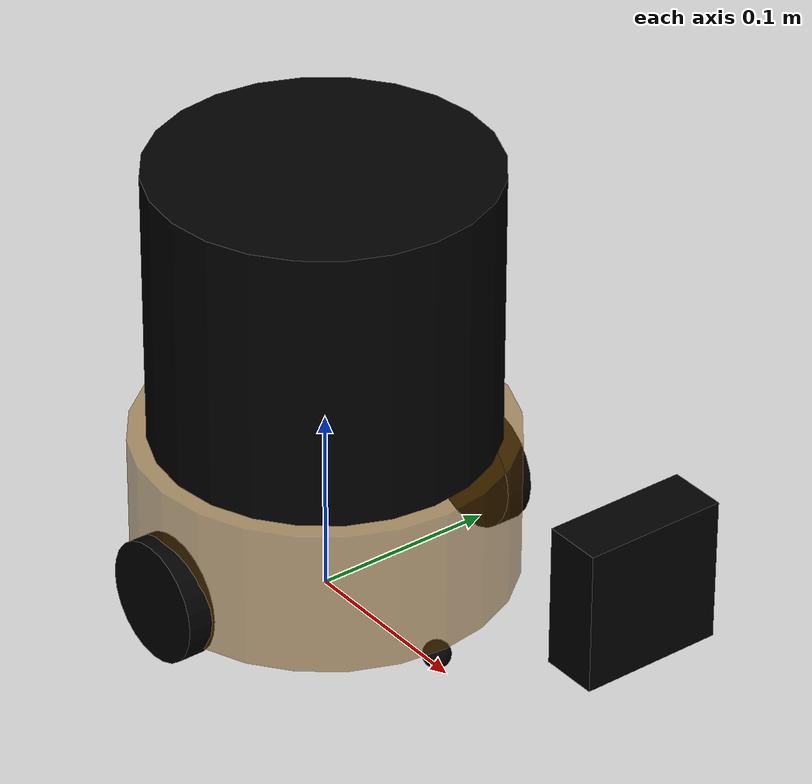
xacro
<robot name = "mycar" xmlns:xacro = "http://wiki.ros.org/xacro">

    <!-- 包含惯性矩阵文件 -->
    <xacro:include filename = "head.xacro"/>

    <!-- 硬件可视化，或者说模型样子 -->
    <!-- 底盘 -->
    <xacro:include filename = "car_base.urdf.xacro"/>
    <!-- 摄像头 -->
    <xacro:include filename = "car_camera.urdf.xacro"/>
    <!-- 雷达 -->
    <xacro:include filename = "car_laser.urdf.xacro"/>

    <!-- Gazebo配置 -->
    <!-- 传动装置 -->
    <xacro:include filename = "move.urdf.xacro" />
    <!-- 雷达仿真 -->
    <xacro:include filename = "sensors_laser.urdf.xacro" />
    <!-- 摄像头仿真 -->
    <xacro:include filename = "sensors_camera.urdf.xacro" />
</robot>

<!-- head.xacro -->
<!-- 定义机器人名称为 "base"，并使用 xacro 的命名空间 -->
<robot name = "base" xmlns:xacro = "http://wiki.ros.org/xacro">

    <!-- Macro for inertia matrix -->

    <!-- 定义一个名为 "sphere_inertial_matrix" 的宏，用于生成球体的惯性矩 -->
    <!-- 参数 "m" 表示球体质量，"r" 表示球体半径 -->
    <xacro:macro name = "sphere_inertial_matrix" params = "m r">
        <!-- 定义惯性参数 -->
        <inertial>
            <!-- 设置球体的质量 -->
            <mass value = "${m}" />
            <!-- 设置球体的惯性矩，根据公式 I = 2/5 * m * r^2 -->
            <inertia ixx = "${2*m*r*r/5}" ixy = "0" ixz = "0"
                iyy = "${2*m*r*r/5}" iyz = "0"
                izz = "${2*m*r*r/5}" />
        </inertial>
    </xacro:macro>

    <!-- 定义一个名为 "cylinder_inertial_matrix" 的宏，用于生成圆柱体的惯性矩 -->
    <!-- 参数 "m" 表示圆柱体质量，"r" 表示圆柱体半径，"h" 表示圆柱体高度 -->
    <xacro:macro name = "cylinder_inertial_matrix" params = "m r h">
        <!-- 定义惯性参数 -->
        <inertial>
            <!-- 设置圆柱体的质量 -->
            <mass value = "${m}" />
            <!-- 设置圆柱体的惯性矩 -->
            <!-- ixx 和 iyy 的计算公式为 I = m * (3*r^2 + h^2) / 12 -->
            <!-- izz 的计算公式为 I = 1/2 * m * r^2 -->
            <inertia ixx = "${m*(3*r*r+h*h)/12}" ixy = "0" ixz = "0"
                iyy = "${m*(3*r*r+h*h)/12}" iyz = "0"
                izz = "${m*r*r/2}" />
        </inertial>
    </xacro:macro>

    <!-- 定义一个名为 "Box_inertial_matrix" 的宏，用于生成长方体的惯性矩 -->
    <!-- 参数 "m" 表示长方体质量，"l" 表示长度，"w" 表示宽度，"h" 表示高度 -->
    <xacro:macro name = "Box_inertial_matrix" params = "m l w h">
       <!-- 定义惯性参数 -->
       <inertial>
           <!-- 设置长方体的质量 -->
           <mass value = "${m}" />
           <!-- 设置长方体的惯性矩 -->
           <!-- ixx 的计算公式为 I = m * (h^2 + l^2) / 12 -->
           <!-- iyy 的计算公式为 I = m * (w^2 + l^2) / 12 -->
           <!-- izz 的计算公式为 I = m * (w^2 + h^2) / 12 -->
           <inertia ixx = "${m*(h*h + l*l)/12}" ixy = "0" ixz = "0"
               iyy = "${m*(w*w + l*l)/12}" iyz = "0"
               izz = "${m*(w*w + h*h)/12}" />
       </inertial>
   </xacro:macro>
</robot>

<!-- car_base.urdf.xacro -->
<!--
    使用 xacro 优化 URDF 版的小车底盘实现：

    实现思路:
    1.将一些常量、变量封装为 xacro:property
      比如:PI 值、小车底盘半径、离地间距、车轮半径、宽度 ....
    2.使用 宏 封装驱动轮以及支撑轮实现，调用相关宏生成驱动轮与支撑轮

-->
<!-- 根标签，必须声明 xmlns:xacro -->
<robot name="my_base" xmlns:xacro="http://www.ros.org/wiki/xacro">
    <!-- 封装变量、常量 -->
    <!-- PI 值设置精度需要高一些，否则后续车轮翻转量计算时，可能会出现肉眼不能察觉的车轮倾斜，从而导致模型抖动 -->
    <xacro:property name="PI" value="3.1415926"/>
    <!-- 宏:黑色设置 -->
    <material name="black">
        <color rgba="0.0 0.0 0.0 1.0" />
    </material>
    <!-- 底盘属性 -->
    <xacro:property name="base_footprint_radius" value="0.001" /> <!-- base_footprint 半径  -->
    <xacro:property name="base_link_radius" value="0.1" /> <!-- base_link 半径 -->
    <xacro:property name="base_link_length" value="0.08" /> <!-- base_link 长 -->
    <xacro:property name="earth_space" value="0.015" /> <!-- 离地间距 -->
    <xacro:property name="base_link_m" value="0.5" /> <!-- 质量  -->

    <!-- 底盘 -->
    <link name="base_footprint">
      <visual>
        <geometry>
          <sphere radius="${base_footprint_radius}" />
        </geometry>
      </visual>
    </link>

    <link name="base_link">
      <visual>
        <geometry>
          <cylinder radius="${base_link_radius}" length="${base_link_length}" />
        </geometry>
        <origin xyz="0 0 0" rpy="0 0 0" />
        <material name="yellow">
          <color rgba="0.5 0.3 0.0 0.5" />
        </material>
      </visual>
      <!-- extra add -->
      <collision>
        <geometry>
          <cylinder radius="${base_link_radius}" length="${base_link_length}" />
        </geometry>
        <origin xyz="0 0 0" rpy="0 0 0" />
      </collision>
      <!-- add inertial macro -->
      <xacro:cylinder_inertial_matrix m="${base_link_m}" r="${base_link_radius}" h="${base_link_length}" />

    </link>

    <joint name="base_link2base_footprint" type="fixed">
      <parent link="base_footprint" />
      <child link="base_link" />
      <origin xyz="0 0 ${earth_space + base_link_length / 2 }" />
    </joint>

    <!-- setting color -->
    <gazebo reference="base_link">
        <material>Gazebo/Yellow</material>
    </gazebo>

    <!-- 驱动轮 -->
    <!-- 驱动轮属性 -->
    <xacro:property name="wheel_radius" value="0.0325" /><!-- 半径 -->
    <xacro:property name="wheel_length" value="0.015" /><!-- 宽度 -->
    <xacro:property name="wheel_m" value="0.05" /> <!-- 质量  -->

    <!-- 驱动轮宏实现 -->
    <xacro:macro name="add_wheels" params="name flag">
      <link name="${name}_wheel">
        <visual>
          <geometry>
            <cylinder radius="${wheel_radius}" length="${wheel_length}" />
          </geometry>
          <origin xyz="0.0 0.0 0.0" rpy="${PI / 2} 0.0 0.0" />
          <material name="black" />
        </visual>
        <!-- extra add -->
        <collision>
          <geometry>
            <cylinder radius="${wheel_radius}" length="${wheel_length}" />
          </geometry>
          <origin xyz="0.0 0.0 0.0" rpy="${PI / 2} 0.0 0.0" />
        </collision>
        <!-- add inertial macro -->
        <xacro:cylinder_inertial_matrix m="${wheel_m}" r="${wheel_radius}" h="${wheel_length}" />
      </link>

      <joint name="${name}_wheel2base_link" type="continuous">
        <parent link="base_link" />
        <child link="${name}_wheel" />
        <origin xyz="0 ${flag * base_link_radius} ${-(earth_space + base_link_length / 2 - wheel_radius) }" />
        <axis xyz="0 1 0" />
      </joint>

      <gazebo reference="${name}_wheel">
        <material>Gazebo/Red</material>
      </gazebo>

    </xacro:macro>

    <xacro:add_wheels name="left" flag="1" />
    <xacro:add_wheels name="right" flag="-1" />
    <!-- 支撑轮 -->
    <!-- 支撑轮属性 -->
    <xacro:property name="support_wheel_radius" value="0.0075" /> <!-- 支撑轮半径 -->
    <xacro:property name="support_wheel_m" value="0.03" /> <!-- 质量  -->

    <!-- 支撑轮宏 -->
    <xacro:macro name="add_support_wheel" params="name flag" >
      <link name="${name}_wheel">
        <visual>
            <geometry>
                <sphere radius="${support_wheel_radius}" />
            </geometry>
            <origin xyz="0 0 0" rpy="0 0 0" />
            <material name="black" />
        </visual>
        <!-- add -->
        <collision>
            <geometry>
                <sphere radius="${support_wheel_radius}" />
            </geometry>
            <origin xyz="0 0 0" rpy="0 0 0" />
        </collision>
        <xacro:sphere_inertial_matrix m="${support_wheel_m}" r="${support_wheel_radius}" />
      </link>

      <joint name="${name}_wheel2base_link" type="continuous">
          <parent link="base_link" />
          <child link="${name}_wheel" />
          <origin xyz="${flag * (base_link_radius - support_wheel_radius)} 0 ${-(base_link_length / 2 + earth_space / 2)}" />
          <axis xyz="1 1 1" />
      </joint>
      <gazebo reference="${name}_wheel">
        <material>Gazebo/Red</material>
      </gazebo>
    </xacro:macro>

    <xacro:add_support_wheel name="front" flag="1" />
    <xacro:add_support_wheel name="back" flag="-1" />

</robot>

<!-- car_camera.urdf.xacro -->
<robot name="my_camera" xmlns:xacro="http://wiki.ros.org/xacro">

    <xacro:property name="camera_length" value="0.03" />
    <xacro:property name="camera_width" value="0.075" />
    <xacro:property name="camera_height" value="0.075" />
    <xacro:property name="camera_x" value="0.24" />
    <xacro:property name="camera_y" value="0.0" />
    <xacro:property name="camera_z" value="${base_link_length / 2 + camera_height / 2}" />

    <link name="camera">
        <visual>
            <geometry>
                <box size="${camera_length} ${camera_width} ${camera_height}" />
            </geometry>
            <origin xyz="0.0 0.0 0.0" rpy="0.0 0.0 0.0" />
            <material name="black" />
        </visual>
    </link>

    <joint name="camera2base_link" type="fixed">
        <parent link="base_link" />
        <child link="camera" />
        <origin xyz="${camera_x} ${camera_y} ${camera_z}" />
    </joint>

</robot>

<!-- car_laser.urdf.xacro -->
<robot name="my_laser" xmlns:xacro="http://wiki.ros.org/xacro">

    <xacro:property name="support_length" value="0.0" />
    <xacro:property name="support_radius" value="0.0" />
    <xacro:property name="support_x" value="0.0" />
    <xacro:property name="support_y" value="0.0" />
    <xacro:property name="support_z" value="${base_link_length / 2 + support_length / 2}" />

    <link name="support">
        <visual>
            <geometry>
                <cylinder radius="${support_radius}" length="${support_length}" />
            </geometry>
            <origin xyz="0.0 0.0 0.0" rpy="0.0 0.0 0.0" />
            <material name="red">
                <color rgba="0.8 0.2 0.0 0.8" />
            </material>
        </visual>
    </link>

    <joint name="support2base_link" type="fixed">
        <parent link="base_link" />
        <child link="support" />
        <origin xyz="${support_x} ${support_y} ${support_z}" />
    </joint>

    <xacro:property name="laser_length" value="0.15" />
    <xacro:property name="laser_radius" value="0.09" />
    <xacro:property name="laser_x" value="0.0" />
    <xacro:property name="laser_y" value="0.0" />
    <xacro:property name="laser_z" value="${support_length / 2 + laser_length / 2}" />

    <link name="laser">
        <visual>
            <geometry>
                <cylinder radius="${laser_radius}" length="${laser_length}" />
            </geometry>
            <origin xyz="0.0 0.0 0.0" rpy="0.0 0.0 0.0" />
            <material name="black" />
        </visual>
    </link>

    <joint name="laser2support" type="fixed">
        <parent link="support" />
        <child link="laser" />
        <origin xyz="${laser_x} ${laser_y} ${laser_z}" />
    </joint>
</robot>
